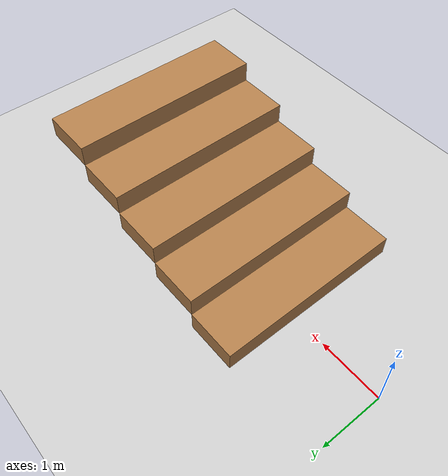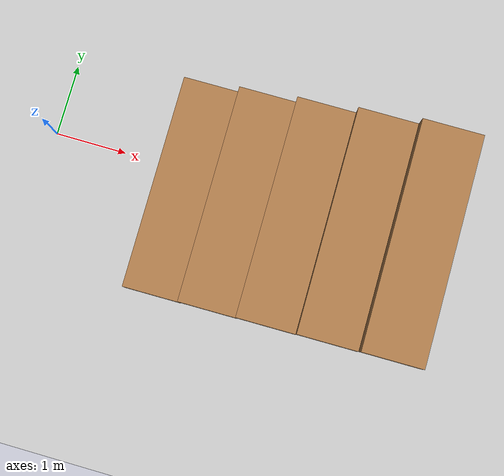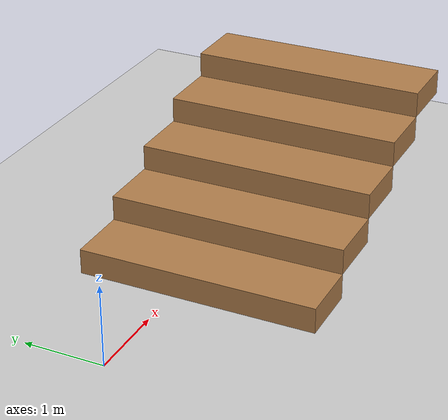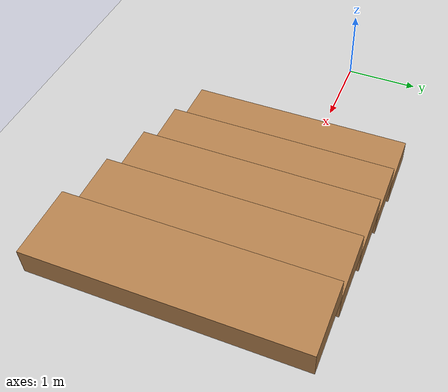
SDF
<sdf version="1.7">
 <world name="default">
  <model name="ground_plane">
   <static>1</static>
   <link name="link">
    <collision name="collision">
     <geometry><plane><normal>0 0 1</normal><size>100 100</size></plane></geometry>
     <surface><friction><ode><mu>0.7</mu><mu2>0.7</mu2></ode></friction></surface>
    </collision>
    <visual name="visual">
     <cast_shadows>0</cast_shadows>
     <geometry><plane><normal>0 0 1</normal><size>100 100</size></plane></geometry>
     <material>
      <script><uri>file://media/materials/scripts/gazebo.material</uri><name>Gazebo/Grey</name></script>
     </material>
    </visual>
   </link>
  </model>
  <light name="sun" type="directional">
   <pose>0 0 10 0 -0 0</pose>
   <diffuse>0.8 0.8 0.8 1</diffuse>
   <specular>0.1 0.1 0.1 1</specular>
   <attenuation>
    <range>1000</range>
    <constant>0.9</constant>
    <linear>0.01</linear>
    <quadratic>0.001</quadratic>
   </attenuation>
   <direction>-0.5 0.5 -1</direction>
   <spot><inner_angle>0</inner_angle><outer_angle>0</outer_angle><falloff>0</falloff></spot>
  </light>
  <gravity>0 0 -9.81</gravity>
  <magnetic_field>6e-06 2.3e-05 -4.2e-05</magnetic_field>
  <atmosphere type="adiabatic"/>
  <physics name="default_physics" default="0" type="ode">
   <max_step_size>0.001</max_step_size>
   <real_time_factor>1</real_time_factor>
   <real_time_update_rate>1000</real_time_update_rate>
  </physics>
  <scene><ambient>0.4 0.4 0.4 1</ambient><background>0.7 0.7 0.7 1</background><shadows>1</shadows></scene>
  <spherical_coordinates>
   <surface_model>EARTH_WGS84</surface_model>
   <latitude_deg>0</latitude_deg>
   <longitude_deg>0</longitude_deg>
   <elevation>0</elevation>
   <heading_deg>0</heading_deg>
  </spherical_coordinates>
  <model name="stair_1">
   <pose>3.53287 -0.283086 0 0 -0 1.57677</pose>
   <link name="Stairs_1">
    <visual name="Stairs_1_Visual_0">
     <pose>-0 1.6 0.16 0 -0 0</pose>
     <geometry><box><size>3 0.8 0.32</size></box></geometry>
     <material>
      <script><uri>file://media/materials/scripts/gazebo.material</uri><name>Gazebo/Wood</name></script>
      <ambient>1 1 1 1</ambient>
     </material>
     <meta><layer>0</layer></meta>
    </visual>
    <collision name="Stairs_1_Collision_0">
     <geometry><box><size>3 0.8 0.32</size></box></geometry>
     <pose>-0 1.6 0.16 0 -0 0</pose>
    </collision>
    <visual name="Stairs_1_Visual_1">
     <pose>-0 0.8 0.48 0 -0 0</pose>
     <geometry><box><size>3 0.8 0.32</size></box></geometry>
     <material>
      <script><uri>file://media/materials/scripts/gazebo.material</uri><name>Gazebo/Wood</name></script>
      <ambient>1 1 1 1</ambient>
     </material>
     <meta><layer>0</layer></meta>
    </visual>
    <collision name="Stairs_1_Collision_1">
     <geometry><box><size>3 0.8 0.32</size></box></geometry>
     <pose>-0 0.8 0.48 0 -0 0</pose>
    </collision>
    <visual name="Stairs_1_Visual_2">
     <pose>-0 0 0.8 0 -0 0</pose>
     <geometry><box><size>3 0.8 0.32</size></box></geometry>
     <material>
      <script><uri>file://media/materials/scripts/gazebo.material</uri><name>Gazebo/Wood</name></script>
      <ambient>1 1 1 1</ambient>
     </material>
     <meta><layer>0</layer></meta>
    </visual>
    <collision name="Stairs_1_Collision_2">
     <geometry><box><size>3 0.8 0.32</size></box></geometry>
     <pose>-0 0 0.8 0 -0 0</pose>
    </collision>
    <visual name="Stairs_1_Visual_3">
     <pose>-0 -0.8 1.12 0 -0 0</pose>
     <geometry><box><size>3 0.8 0.32</size></box></geometry>
     <material>
      <script><uri>file://media/materials/scripts/gazebo.material</uri><name>Gazebo/Wood</name></script>
      <ambient>1 1 1 1</ambient>
     </material>
     <meta><layer>0</layer></meta>
    </visual>
    <collision name="Stairs_1_Collision_3">
     <geometry><box><size>3 0.8 0.32</size></box></geometry>
     <pose>-0 -0.8 1.12 0 -0 0</pose>
    </collision>
    <visual name="Stairs_1_Visual_4">
     <pose>-0 -1.6 1.44 0 -0 0</pose>
     <geometry><box><size>3 0.8 0.32</size></box></geometry>
     <material>
      <script><uri>file://media/materials/scripts/gazebo.material</uri><name>Gazebo/Wood</name></script>
      <ambient>1 1 1 1</ambient>
     </material>
     <meta><layer>0</layer></meta>
    </visual>
    <collision name="Stairs_1_Collision_4">
     <geometry><box><size>3 0.8 0.32</size></box></geometry>
     <pose>-0 -1.6 1.44 0 -0 0</pose>
    </collision>
   </link>
   <static>1</static>
  </model>
 </world>
</sdf>
